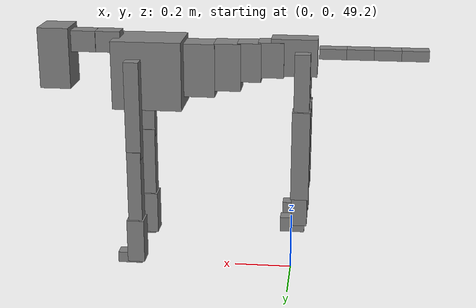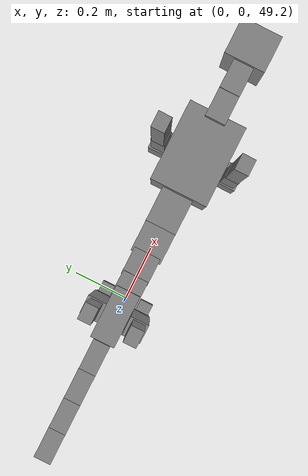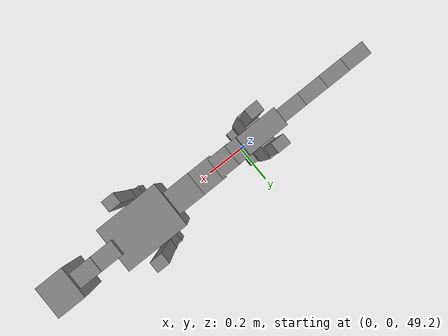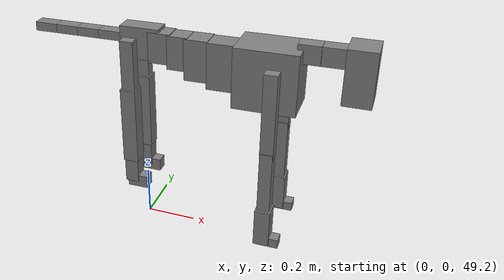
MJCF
<mujoco model="dog">

    <default>
        <joint armature="0.02" stiffness="1" damping="0.2" limited="true"/>
        <geom condim="3" friction="1 0.05 0.05" margin="0.01"/>
        <motor ctrllimited="true" ctrlrange="-1.0 1.0" forcelimited="true" gear="50"/>
    </default>

    <compiler inertiafromgeom="true" angle="radian"/>

    <option timestep="0.016" iterations="50" tolerance="1e-10" solver="Newton" jacobian="dense" cone="pyramidal"/>

    <size nconmax="20000" njmax="60000" nstack="5000000"/>
    <visual>
        <map force="0.1" zfar="30"/>
        <rgba haze="0.15 0.25 0.35 1"/>
        <quality shadowsize="2048"/>
        <global offwidth="800" offheight="800"/>
    </visual>

    <asset>
        <texture type="skybox" builtin="gradient" rgb1="0.3 0.5 0.7" rgb2="0 0 0" width="512" height="512"/>
        <texture name="texplane" type="2d" builtin="checker" rgb1=".2 .3 .4" rgb2=".1 0.15 0.2" width="512" height="512"
                 mark="cross" markrgb=".8 .8 .8"/>
        <texture name="texgeom" type="cube" builtin="flat" mark="cross" width="127" height="1278" rgb1="0.8 0.6 0.4"
                 rgb2="0.8 0.6 0.4" markrgb="1 1 1" random="0.01"/>

        <material name="matplane" reflectance="0.3" texture="texplane" texrepeat="1 1" texuniform="true"/>
        <material name="matgeom" texture="texgeom" texuniform="true" rgba="0.8 0.6 .4 1"/>
    </asset>

    <worldbody>
        <geom name="floor" pos="0 0 0" size="0 0 .25" type="plane" material="matplane" condim="3"/>

        <light directional="false" diffuse=".2 .2 .2" specular="0 0 0" pos="0 0 5" dir="0 0 -1" castshadow="false"/>
        <light mode="targetbodycom" target="torso" directional="false" diffuse=".8 .8 .8" specular="0.3 0.3 0.3"
               pos="0 0 4.0" dir="0 0 -1"/>

        <body name="root" pos="0 0 50">
            <freejoint name="root_1"/>
            <geom type="box" pos="0 0 -0.02" size="0.0774  0.0358  0.063" density="2030"/>

            <body name="spine1" pos="0.054 0 0">
                <joint name="spine1_y" axis="0 1 0" range="0 0.7" limited="true"/>
                <geom type="box" pos="0.02375 0 -0.03" size="0.04375  0.0375  0.05985" density="2030"/>

                <body name="spine2" pos="0.0612 0 0">
                    <joint name="spine2_y" axis="0 1 0" range="-0.15 0.15" limited="true"/>
                    <geom type="box" pos="0.03555  0  -0.04" size="0.04055  0.039  0.06615" density="2030"/>

                    <body name="spine3" pos="0.0730 0 0">
                        <joint name="spine3_y" axis="0 1 0" range="-0.15 0.15" limited="true"/>
                        <geom type="box" pos="0.03555  0  -0.057" size="0.04555  0.0445  0.081" density="2030"/>

                        <body name="spine4" pos="0.0780 0 0">
                            <joint name="spine4_y" axis="0 1 0" range="-0.15 0.15" limited="true"/>
                            <geom type="box" pos="0.05265  0  -0.07" size="0.05265  0.045  0.09135" density="2030"/>

                            <body name="torso" pos="0.1082 0 0">
                                <joint name="torso_y" axis="0 1 0" range="-0.15 0.15" limited="true"/>
                                <geom type="box" pos="0.11925  0  -0.085" size="0.11925  0.085  0.11745"
                                      density="2030"/>

                                <body name="neck1" pos="0.2160  0   0.0180">
                                    <joint name="neck1_y" axis="0 1 0" range="-1.2  -1" limited="true"/>
                                    <geom type="box" pos="0.0423  0  0" size="0.0423  0.03  0.036" density="2325"/>

                                    <body name="neck2" pos="0.0853  0  0">
                                        <joint name="neck2_y" axis="0 1 0" range="0.1  0" limited="true"/>
                                        <geom type="box" pos="0.0423  0  0" size="0.0423  0.03  0.036" density="2325"/>

                                        <body name="head" pos="0.0853  0  0">
                                            <joint name="head_y" axis="0 1 0" range="-0.3  -0.2" limited="true"/>
                                            <geom type="box" pos="0.0531  0  -0.055" size="0.0531  0.06  0.1044"
                                                  density="4030"/>

                                        </body>
                                    </body>
                                </body>

                                <body name="front_shoulder" pos="0.156  0   -0.0480">
                                    <joint name="front_shoulder_y" axis="0 1 0" range="-1 1.5" limited="true"/>
                                    <geom type="box" pos="0 0.13 -0.1422" size="0.0252  0.0216  0.1688" density="1158"/>
                                    <geom type="box" pos="0 -0.13 -0.1422" size="0.0252  0.0216  0.1688"
                                          density="1158"/>

                                    <body name="front_elbow" pos="0  0  -0.2844">
                                        <joint name="front_elbow_y" axis="0 1 0" range="-2 0" limited="true"/>
                                        <geom type="box" pos="0 0.13 -0.1297" size="0.0239  0.0245  0.1297"
                                              density="1081"/>
                                        <geom type="box" pos="0 -0.13 -0.1297" size="0.0239  0.0245  0.1297"
                                              density="1081"/>

                                        <body name="front_wrist" pos="0  0  -0.2594">
                                            <joint name="front_wrist_y" axis="0 1 0" range="-0.2 0" limited="true"/>
                                            <geom type="box" pos="0 0.13 -0.0629" size="0.0296  0.0329  0.0760"
                                                  density="1664"/>
                                            <geom type="box" pos="0 -0.13 -0.0629" size="0.0296  0.0329  0.0760"
                                                  density="1664"/>

                                            <body name="front_finger_end" pos="0  0  -0.1258">
                                                <joint name="front_finger_y" axis="0 1 0" range="-0.4 1"
                                                       limited="true"/>
                                                <geom type="box" pos="0.0229  0.13  -0.0037"
                                                      size="0.0419  0.0229  0.0187" density="1515"/>
                                                <geom type="box" pos="0.0229  -0.13  -0.0037"
                                                      size="0.0419  0.0229  0.0187" density="1515"/>

                                            </body>

                                        </body>
                                    </body>
                                </body>

                            </body>
                        </body>
                    </body>
                </body>
            </body>

            <body name="back_hip" pos="-0.03 0 -0.018">
                <joint name="back_hip_y" axis="0 1 0" range="-1.5 0.3" limited="true"/>
                <geom type="box" pos="0 0.07 -0.0939" size="0.0259  0.0203  0.1167" density="1154"/>
                <geom type="box" pos="0 -0.07 -0.0939" size="0.0259  0.0203  0.1167" density="1154"/>

                <body name="back_knee" pos="0  0  -0.1878">
                    <joint name="back_knee_y" axis="0 1 0" range="0 2.8" limited="true"/>
                    <geom type="box" pos="0 0.07 -0.1394" size="0.0302  0.0298  0.1549" density="1227"/>
                    <geom type="box" pos="0 -0.07 -0.1394" size="0.0302  0.0298  0.1549" density="1227"/>

                    <body name="back_ankle" pos="0  0  -0.2788">
                        <joint name="back_ankle_y" axis="0 1 0" range="-2.2 0" limited="true"/>
                        <geom type="box" pos="0 0.07 -0.0503" size="0.0267  0.0267  0.0615" density="1284"/>
                        <geom type="box" pos="0 -0.07 -0.0503" size="0.0267  0.0267  0.0615" density="1284"/>

                        <body name="back_toe_end" pos="0  0  -0.1006">
                            <joint name="back_toe_y" axis="0 1 0" range="-0.4 1" limited="true"/>
                            <geom type="box" pos="0.0226  0.07  -0.0106" size="0.0415  0.0226  0.0256" density="1515"/>
                            <geom type="box" pos="0.0226  -0.07  -0.0106" size="0.0415  0.0226  0.0256" density="1515"/>

                        </body>
                    </body>
                </body>
            </body>

            <body name="tail1" pos="-0.074 0 -0.006">
                <joint name="tail1_y" axis="0 1 0" range="-0.2 0.2" limited="true"/>
                <geom type="box" pos="-0.0536  0  0" size="0.045  0.025  0.0175" density="1587"/>

                <body name="tail2" pos="-0.09 0 0">
                    <joint name="tail2_y" axis="0 1 0" range="-0.2 0.2" limited="true"/>
                    <geom type="box" pos="-0.0536  0  0" size="0.045  0.025  0.0175" density="1587"/>

                    <body name="tail3" pos="-0.09 0 0">
                        <joint name="tail3_y" axis="0 1 0" range="-0.2 0.2" limited="true"/>
                        <geom type="box" pos="-0.0536  0  0" size="0.045  0.025  0.0175" density="1587"/>

                        <body name="tail4" pos="-0.09 0 0">
                            <joint name="tail4_y" axis="0 1 0" range="-0.2 0.2" limited="true"/>
                            <geom type="box" pos="-0.0536  0  0" size="0.045  0.025  0.0175" density="1587"/>

                        </body>
                    </body>
                </body>
            </body>
        </body>
    </worldbody>

    <actuator>
        <motor joint="spine1_y" forcerange="-150 150     "/>
        <motor joint="spine2_y" forcerange="-150 150     "/>
        <motor joint="spine3_y" forcerange="-150 150     "/>
        <motor joint="spine4_y" forcerange="-150 150     "/>
        <motor joint="torso_y" forcerange="-150 150     "/>
        <motor joint="neck1_y" forcerange="-100 100       "/>
        <motor joint="neck2_y" forcerange="-100 100       "/>
        <motor joint="head_y" forcerange="-150 150       "/>
        <motor joint="front_shoulder_y" forcerange="-127.18 116.54"/>
        <motor joint="front_elbow_y" forcerange="-134.40 143.66"/>
        <motor joint="front_wrist_y" forcerange="-146.63 116.75"/>
        <motor joint="front_finger_y" forcerange="-42.31 39.65"/>
        <motor joint="back_hip_y" forcerange="-200.32 270.01"/>
        <motor joint="back_knee_y" forcerange="-363.65 269.36"/>
        <motor joint="back_angle_y" forcerange="-229.83 97.11"/>
        <motor joint="back_toe_y" forcerange="-54.00 46.99"/>
        <motor joint="tail1_y" forcerange="-50 50     "/>
        <motor joint="tail2_y" forcerange="-50 50     "/>
        <motor joint="tail3_y" forcerange="-50 50     "/>
        <motor joint="tail4_y" forcerange="-50 50     "/>
    </actuator>
</mujoco>
